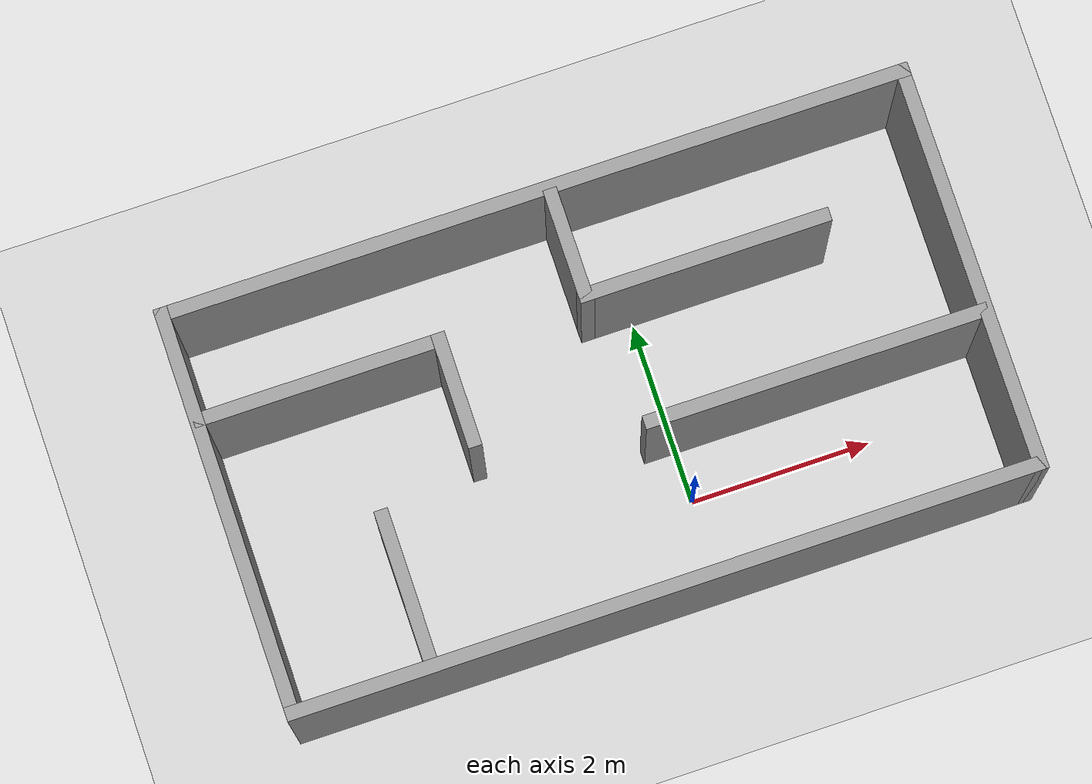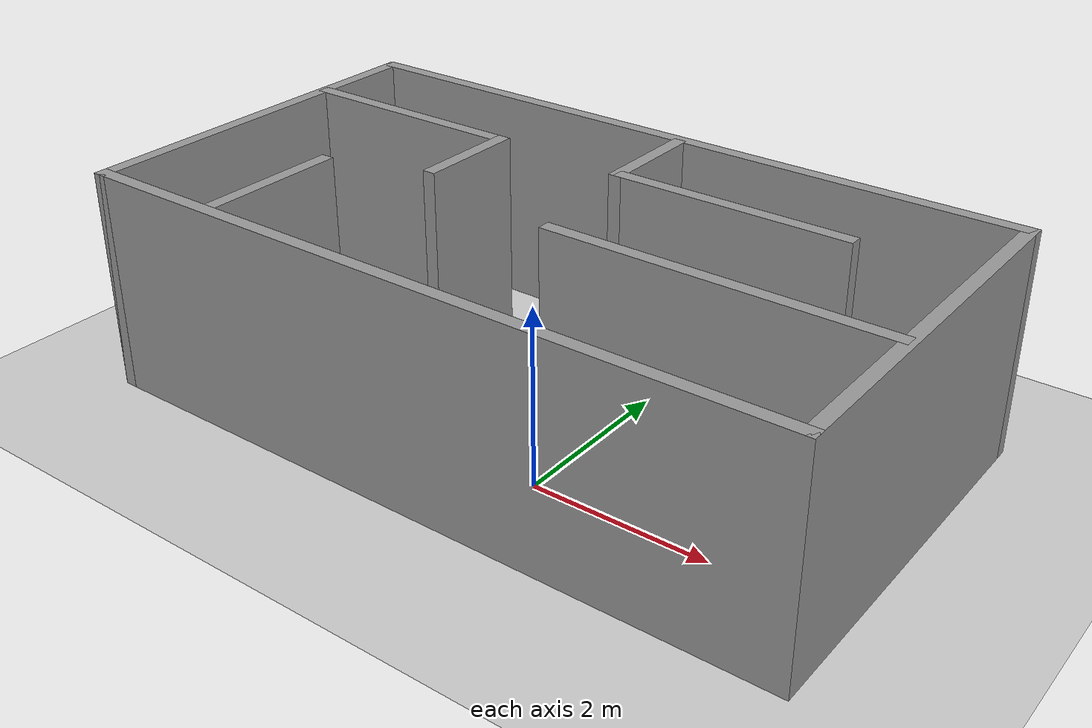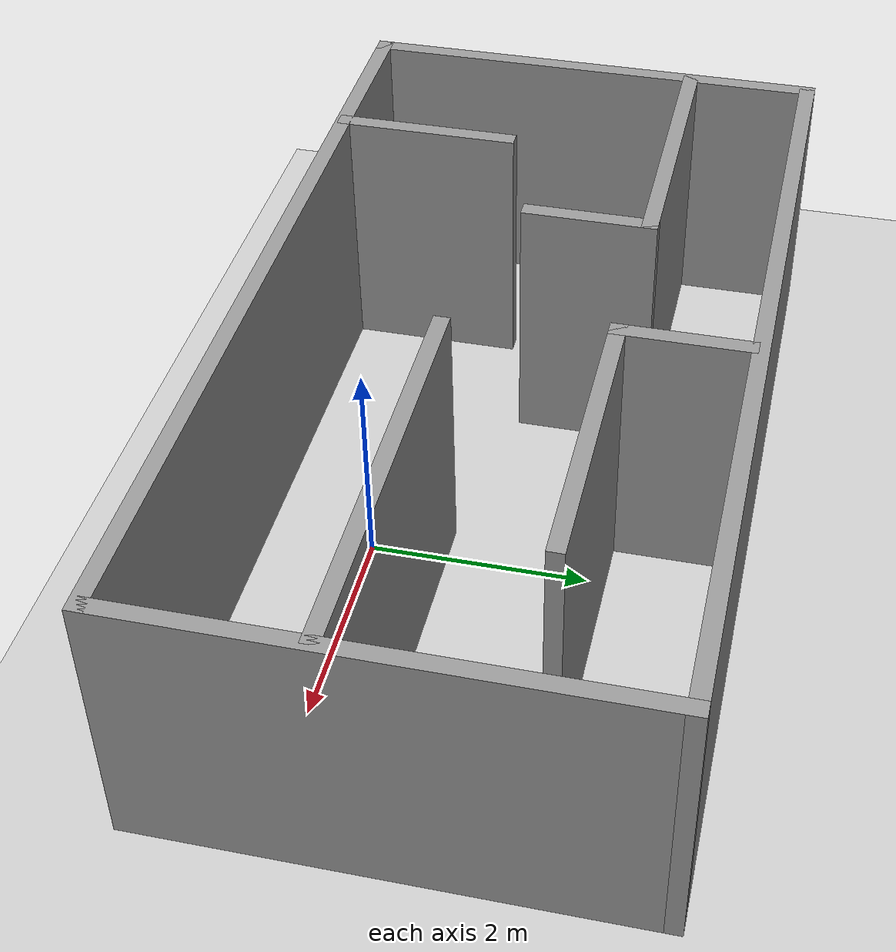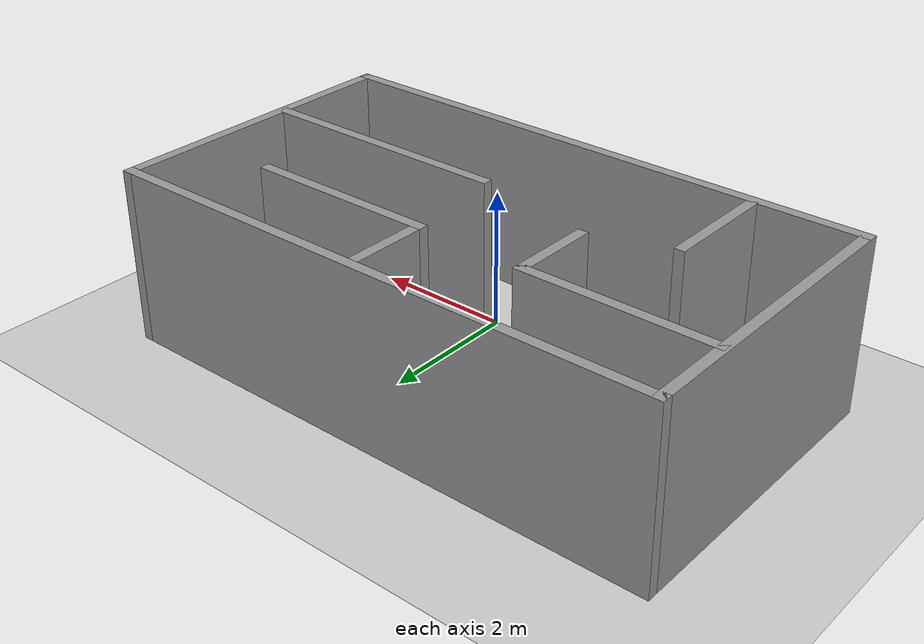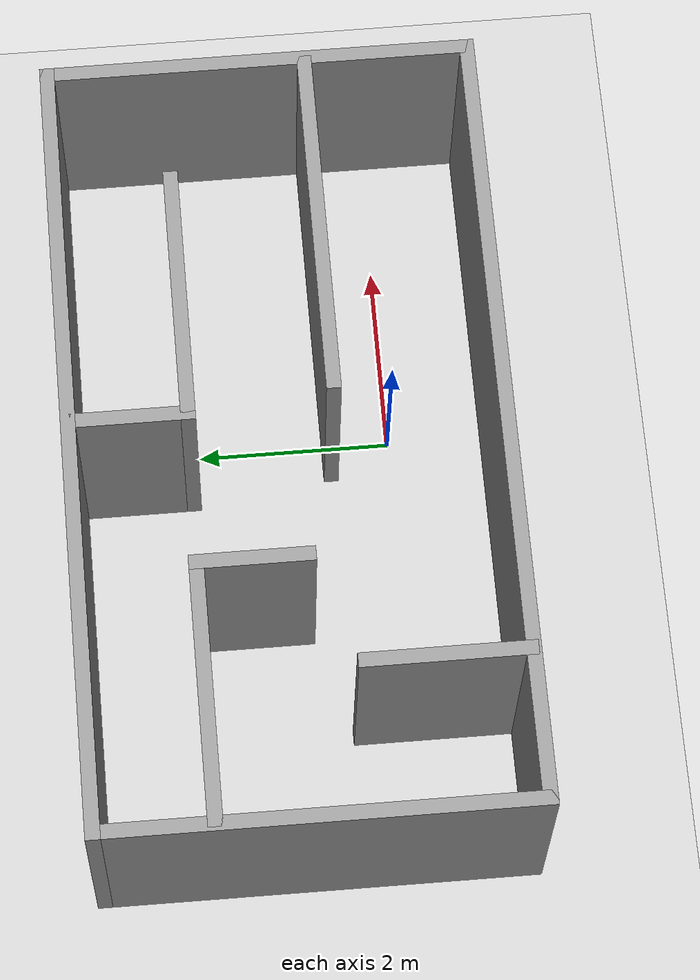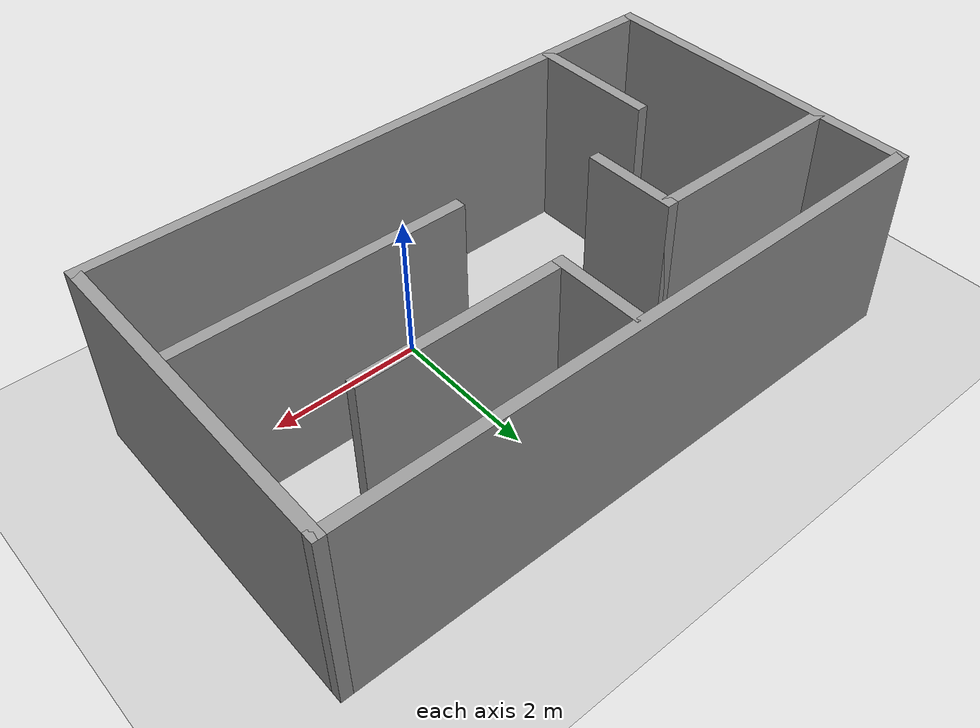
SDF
<sdf version="1.7">
 <world name="default">
  <light name="sun" type="directional">
   <pose>0 0 10 0 -0 0</pose>
   <diffuse>0.8 0.8 0.8 1</diffuse>
   <specular>0.2 0.2 0.2 1</specular>
   <attenuation>
    <range>1000</range>
    <constant>0.9</constant>
    <linear>0.01</linear>
    <quadratic>0.001</quadratic>
   </attenuation>
   <direction>-0.5 0.1 -0.9</direction>
   <spot><inner_angle>0</inner_angle><outer_angle>0</outer_angle><falloff>0</falloff></spot>
  </light>
  <model name="ground_plane">
   <static>1</static>
   <link name="link">
    <collision name="collision">
     <geometry><plane><normal>0 0 1</normal><size>100 100</size></plane></geometry>
     <surface>
      <contact><collide_bitmask>65535</collide_bitmask></contact>
      <friction><ode><mu>100</mu><mu2>50</mu2></ode></friction>
     </surface>
    </collision>
    <visual name="visual">
     <cast_shadows>0</cast_shadows>
     <geometry><plane><normal>0 0 1</normal><size>100 100</size></plane></geometry>
     <material>
      <script><uri>file://media/materials/scripts/gazebo.material</uri><name>Gazebo/Grey</name></script>
     </material>
    </visual>
   </link>
  </model>
  <gravity>0 0 -9.8</gravity>
  <magnetic_field>6e-06 2.3e-05 -4.2e-05</magnetic_field>
  <atmosphere type="adiabatic"/>
  <physics type="ode">
   <max_step_size>0.001</max_step_size>
   <real_time_factor>1</real_time_factor>
   <real_time_update_rate>1000</real_time_update_rate>
  </physics>
  <scene><ambient>0.4 0.4 0.4 1</ambient><background>0.7 0.7 0.7 1</background><shadows>1</shadows></scene>
  <audio><device>default</device></audio>
  <spherical_coordinates>
   <surface_model>EARTH_WGS84</surface_model>
   <latitude_deg>0</latitude_deg>
   <longitude_deg>0</longitude_deg>
   <elevation>0</elevation>
   <heading_deg>0</heading_deg>
  </spherical_coordinates>
  <model name="map">
   <pose>-0.673354 1.11324 0 0 -0 0</pose>
   <link name="Wall_11">
    <collision name="Wall_11_Collision">
     <geometry><box><size>2.75 0.15 2.5</size></box></geometry>
     <pose>0 0 1.25 0 -0 0</pose>
    </collision>
    <visual name="Wall_11_Visual">
     <pose>0 0 1.25 0 -0 0</pose>
     <geometry><box><size>2.75 0.15 2.5</size></box></geometry>
     <material>
      <script><uri>file://media/materials/scripts/gazebo.material</uri><name>Gazebo/Grey</name></script>
      <ambient>1 1 1 1</ambient>
     </material>
     <meta><layer>0</layer></meta>
    </visual>
    <pose>-2.71033 1.0112 0 0 -0 0</pose>
   </link>
   <link name="Wall_12">
    <collision name="Wall_12_Collision">
     <geometry><box><size>1.25 0.15 2.5</size></box></geometry>
     <pose>0 0 1.25 0 -0 0</pose>
    </collision>
    <visual name="Wall_12_Visual">
     <pose>0 0 1.25 0 -0 0</pose>
     <geometry><box><size>1.25 0.15 2.5</size></box></geometry>
     <material>
      <script><uri>file://media/materials/scripts/gazebo.material</uri><name>Gazebo/Grey</name></script>
      <ambient>1 1 1 1</ambient>
     </material>
     <meta><layer>0</layer></meta>
    </visual>
    <pose>-1.41033 0.4612 0 0 -0 -1.5708</pose>
   </link>
   <link name="Wall_14">
    <collision name="Wall_14_Collision">
     <geometry><box><size>1.25 0.15 2.5</size></box></geometry>
     <pose>0 0 1.25 0 -0 0</pose>
    </collision>
    <visual name="Wall_14_Visual">
     <pose>0 0 1.25 0 -0 0</pose>
     <geometry><box><size>1.25 0.15 2.5</size></box></geometry>
     <material>
      <script><uri>file://media/materials/scripts/gazebo.material</uri><name>Gazebo/Grey</name></script>
      <ambient>1 1 1 1</ambient>
     </material>
     <meta><layer>0</layer></meta>
    </visual>
    <pose>0.168775 1.53242 0 0 -0 -1.5708</pose>
   </link>
   <link name="Wall_15">
    <collision name="Wall_15_Collision">
     <geometry><box><size>2.75 0.15 2.5</size></box></geometry>
     <pose>0 0 1.25 0 -0 0</pose>
    </collision>
    <visual name="Wall_15_Visual">
     <pose>0 0 1.25 0 -0 0</pose>
     <geometry><box><size>2.75 0.15 2.5</size></box></geometry>
     <material>
      <script><uri>file://media/materials/scripts/gazebo.material</uri><name>Gazebo/Grey</name></script>
      <ambient>1 1 1 1</ambient>
     </material>
     <meta><layer>0</layer></meta>
    </visual>
    <pose>1.46877 0.982425 0 0 -0 0</pose>
   </link>
   <link name="Wall_17">
    <collision name="Wall_17_Collision">
     <geometry><box><size>1.75 0.15 2.5</size></box></geometry>
     <pose>0 0 1.25 0 -0 0</pose>
    </collision>
    <visual name="Wall_17_Visual">
     <pose>0 0 1.25 0 -0 0</pose>
     <geometry><box><size>1.75 0.15 2.5</size></box></geometry>
     <material>
      <script><uri>file://media/materials/scripts/gazebo.material</uri><name>Gazebo/Grey</name></script>
      <ambient>1 1 1 1</ambient>
     </material>
     <meta><layer>0</layer></meta>
    </visual>
    <pose>-2.54235 -1.34957 0 0 -0 1.5708</pose>
   </link>
   <link name="Wall_19">
    <collision name="Wall_19_Collision">
     <geometry><box><size>3.75 0.15 2.5</size></box></geometry>
     <pose>0 0 1.25 0 -0 0</pose>
    </collision>
    <visual name="Wall_19_Visual">
     <pose>0 0 1.25 0 -0 0</pose>
     <geometry><box><size>3.75 0.15 2.5</size></box></geometry>
     <material>
      <script><uri>file://media/materials/scripts/gazebo.material</uri><name>Gazebo/Grey</name></script>
      <ambient>1 1 1 1</ambient>
     </material>
     <meta><layer>0</layer></meta>
    </visual>
    <pose>2.1908 -0.483225 0 0 -0 3.14159</pose>
   </link>
   <link name="Wall_6">
    <collision name="Wall_6_Collision">
     <geometry><box><size>4.5 0.15 2.5</size></box></geometry>
     <pose>0 0 1.25 0 -0 0</pose>
    </collision>
    <visual name="Wall_6_Visual">
     <pose>0 0 1.25 0 -0 0</pose>
     <geometry><box><size>4.5 0.15 2.5</size></box></geometry>
     <material>
      <script><uri>file://media/materials/scripts/gazebo.material</uri><name>Gazebo/Grey</name></script>
      <ambient>1 1 1 1</ambient>
     </material>
     <meta><layer>0</layer></meta>
    </visual>
    <pose>-4.05 0 0 0 -0 -1.5708</pose>
   </link>
   <link name="Wall_7">
    <collision name="Wall_7_Collision">
     <geometry><box><size>8.25 0.15 2.5</size></box></geometry>
     <pose>0 0 1.25 0 -0 0</pose>
    </collision>
    <visual name="Wall_7_Visual">
     <pose>0 0 1.25 0 -0 0</pose>
     <geometry><box><size>8.25 0.15 2.5</size></box></geometry>
     <material>
      <script><uri>file://media/materials/scripts/gazebo.material</uri><name>Gazebo/Grey</name></script>
      <ambient>1 1 1 1</ambient>
     </material>
     <meta><layer>0</layer></meta>
    </visual>
    <pose>-0 -2.175 0 0 -0 0</pose>
   </link>
   <link name="Wall_8">
    <collision name="Wall_8_Collision">
     <geometry><box><size>4.5 0.15 2.5</size></box></geometry>
     <pose>0 0 1.25 0 -0 0</pose>
    </collision>
    <visual name="Wall_8_Visual">
     <pose>0 0 1.25 0 -0 0</pose>
     <geometry><box><size>4.5 0.15 2.5</size></box></geometry>
     <material>
      <script><uri>file://media/materials/scripts/gazebo.material</uri><name>Gazebo/Grey</name></script>
      <ambient>1 1 1 1</ambient>
     </material>
     <meta><layer>0</layer></meta>
    </visual>
    <pose>4.05 0 0 0 -0 1.5708</pose>
   </link>
   <link name="Wall_9">
    <collision name="Wall_9_Collision">
     <geometry><box><size>8.25 0.15 2.5</size></box></geometry>
     <pose>0 0 1.25 0 -0 0</pose>
    </collision>
    <visual name="Wall_9_Visual">
     <pose>0 0 1.25 0 -0 0</pose>
     <geometry><box><size>8.25 0.15 2.5</size></box></geometry>
     <material>
      <script><uri>file://media/materials/scripts/gazebo.material</uri><name>Gazebo/Grey</name></script>
      <ambient>1 1 1 1</ambient>
     </material>
     <meta><layer>0</layer></meta>
    </visual>
    <pose>-0 2.175 0 0 -0 3.14159</pose>
   </link>
   <static>1</static>
  </model>
 </world>
</sdf>
